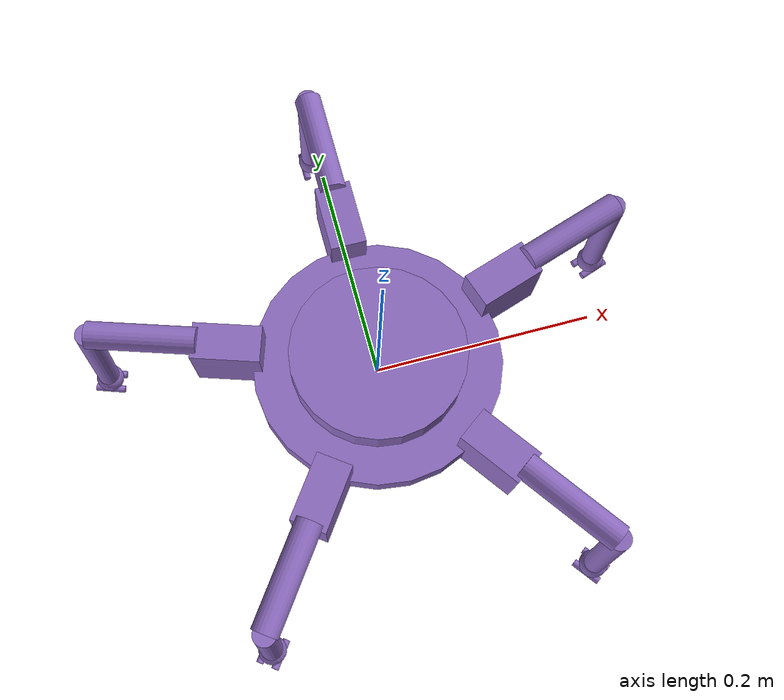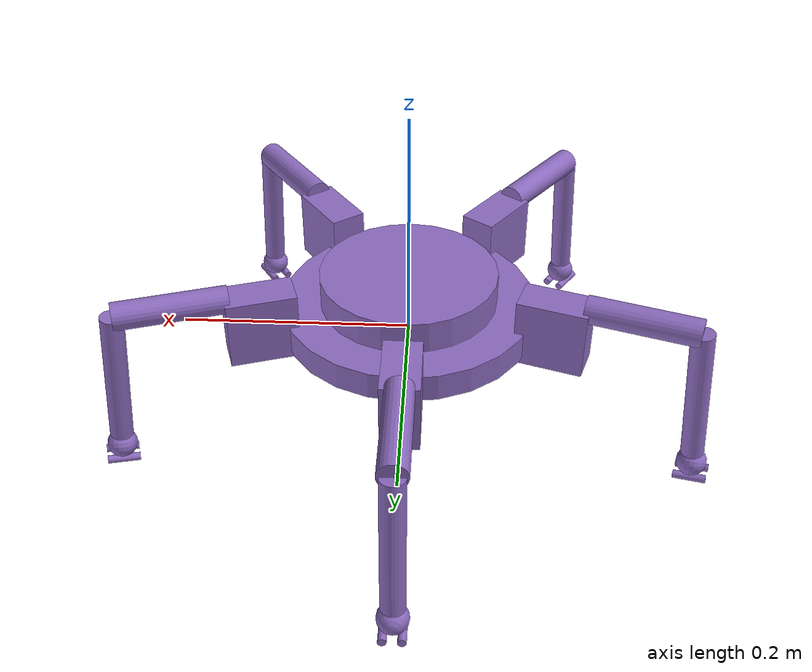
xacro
<?xml version="1.0"?>
<!-- AUTO-GENERATED from cad/params.yaml by generate_urdf.py — edit THAT, not this -->
<robot xmlns:xacro="http://www.ros.org/wiki/xacro" name="pebble">
  <material name="pebble"><color rgba="0.55 0.42 0.75 1"/></material>

  <link name="base_link">
    <inertial><origin xyz="0.000000 0.000000 0.024500"/><mass value="1.35"/><inertia ixx="3.805e-03" ixy="0" ixz="0" iyy="3.805e-03" iyz="0" izz="7.126e-03"/></inertial>
    <visual><origin xyz="0 0 0.018"/>
      <geometry><cylinder radius="0.1100" length="0.024"/></geometry>
      <material name="pebble"/></visual>
    <visual><origin xyz="0 0 0.044"/>
      <geometry><cylinder radius="0.0770" length="0.028"/></geometry>
      <material name="pebble"/></visual>
    <collision><origin xyz="0 0 0.018"/>
      <geometry><cylinder radius="0.1100" length="0.024"/></geometry></collision>
    <collision><origin xyz="0 0 0.044"/>
      <geometry><cylinder radius="0.0770" length="0.028"/></geometry></collision>
  </link>

  <xacro:macro name="pebble_leg" params="i angle">
    <link name="coxa${i}">
      <inertial><origin xyz="0.020000 0.000000 0.030000"/><mass value="0.14"/><inertia ixx="5.395e-05" ixy="0" ixz="0" iyy="8.400e-05" iyz="0" izz="5.395e-05"/></inertial>
      <visual><origin xyz="0.020 0 0.030"/>
        <geometry><box size="0.060 0.032 0.060"/></geometry>
        <material name="pebble"/></visual>
      <collision><origin xyz="0.020 0 0.030"/>
        <geometry><box size="0.060 0.032 0.060"/></geometry></collision>
    </link>
    <joint name="yaw${i}" type="revolute">
      <parent link="base_link"/><child link="coxa${i}"/>
      <origin xyz="${0.1100*cos(angle)} ${0.1100*sin(angle)} 0"
              rpy="0 0 ${angle}"/>
      <axis xyz="0 0 1"/>
      <limit lower="-0.698132" upper="0.698132"
             effort="2.94" velocity="5.2"/>
      <dynamics damping="0.05"/>
    </joint>

    <link name="femur${i}">
      <inertial><origin xyz="0.047500 0.000000 0.000000"/><mass value="0.03"/><inertia ixx="2.160e-06" ixy="0" ixz="0" iyy="2.364e-05" iyz="0" izz="2.364e-05"/></inertial>
      <visual><origin xyz="0.0475 0 0" rpy="0 1.570796 0"/>
        <geometry><cylinder radius="0.012" length="0.0950"/></geometry>
        <material name="pebble"/></visual>
      <collision><origin xyz="0.0475 0 0" rpy="0 1.570796 0"/>
        <geometry><cylinder radius="0.012" length="0.0950"/></geometry></collision>
    </link>
    <joint name="hip${i}" type="revolute">
      <parent link="coxa${i}"/><child link="femur${i}"/>
      <origin xyz="0.0450 0 0.0580"/>
      <axis xyz="0 -1 0"/>
      <limit lower="-1.221730" upper="1.570796"
             effort="2.94" velocity="5.2"/>
      <dynamics damping="0.05"/>
    </joint>

    <link name="tibia${i}">
      <inertial><origin xyz="0.062100 0.000000 0.000000"/><mass value="0.119"/><inertia ixx="5.950e-06" ixy="0" ixz="0" iyy="1.559e-04" iyz="0" izz="1.559e-04"/></inertial>
      <visual><origin xyz="0.0621 0 0" rpy="0 1.570796 0"/>
        <geometry><cylinder radius="0.010" length="0.1242"/></geometry>
        <material name="pebble"/></visual>
      <collision><origin xyz="0.0621 0 0" rpy="0 1.570796 0"/>
        <geometry><cylinder radius="0.010" length="0.1242"/></geometry></collision>
    </link>
    <joint name="knee${i}" type="revolute">
      <parent link="femur${i}"/><child link="tibia${i}"/>
      <origin xyz="0.0950 0 0"/>
      <axis xyz="0 -1 0"/>
      <limit lower="-2.617994" upper="-0.349066"
             effort="2.94" velocity="5.2"/>
      <dynamics damping="0.05"/>
    </joint>

    <link name="foot${i}">
      <inertial><origin xyz="0.000000 0.000000 0.000000"/><mass value="0.05500000000000001"/><inertia ixx="3.448e-06" ixy="0" ixz="0" iyy="3.448e-06" iyz="0" izz="3.448e-06"/></inertial>  <!-- +0.004: fixed claw prong (MJCF parity) -->
      <visual><geometry><sphere radius="0.013"/></geometry>
        <material name="pebble"/></visual>
      <visual><origin xyz="0.012 0.0075 0" rpy="0 0 0.28"/>
        <geometry><cylinder radius="0.0035" length="0.028"/></geometry>
        <material name="pebble"/></visual>
      <collision><geometry><sphere radius="0.013"/></geometry></collision>
    </link>
    <joint name="foot_fix${i}" type="fixed">
      <parent link="tibia${i}"/><child link="foot${i}"/>
      <origin xyz="0.1350 0 0"/>
    </joint>

    <link name="claw${i}_link">
      <inertial><origin xyz="0.000000 0.000000 0.000000"/><mass value="0.004"/><inertia ixx="1.000e-07" ixy="0" ixz="0" iyy="1.000e-07" iyz="0" izz="1.000e-07"/></inertial>
      <visual><origin xyz="0.012 -0.0075 0" rpy="0 0 -0.28"/>
        <geometry><cylinder radius="0.0035" length="0.028"/></geometry>
        <material name="pebble"/></visual>
    </link>
    <joint name="claw${i}" type="revolute">
      <parent link="foot${i}"/><child link="claw${i}_link"/>
      <origin xyz="0 0 0"/>
      <axis xyz="0 0 1"/>
      <limit lower="0.000000" upper="0.959931"
             effort="0.23" velocity="6.0"/>
      <dynamics damping="0.01"/>
    </joint>
  </xacro:macro>

  <xacro:pebble_leg i="0" angle="${radians(90)}"/>
  <xacro:pebble_leg i="1" angle="${radians(162)}"/>
  <xacro:pebble_leg i="2" angle="${radians(234)}"/>
  <xacro:pebble_leg i="3" angle="${radians(306)}"/>
  <xacro:pebble_leg i="4" angle="${radians(378)}"/>

  <xacro:include filename="$(find rocky_description)/urdf/rocky.ros2_control.xacro"/>
</robot>
